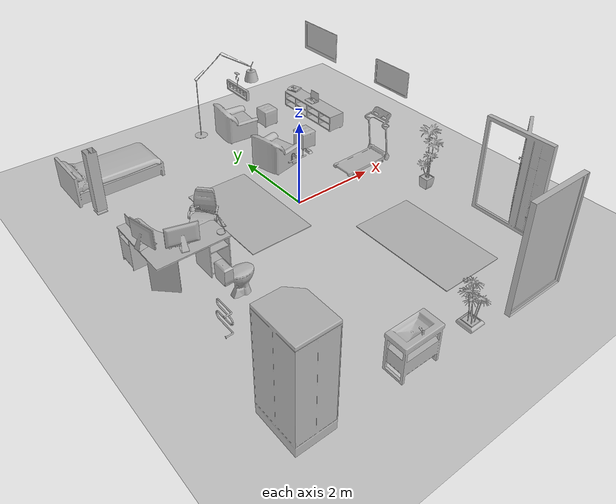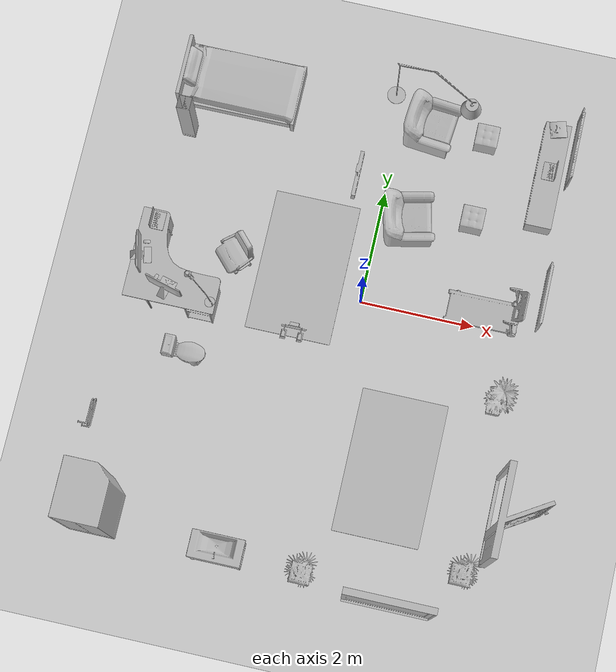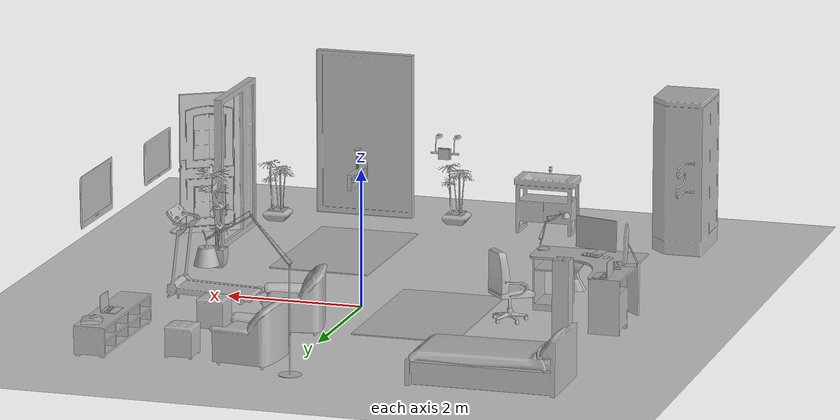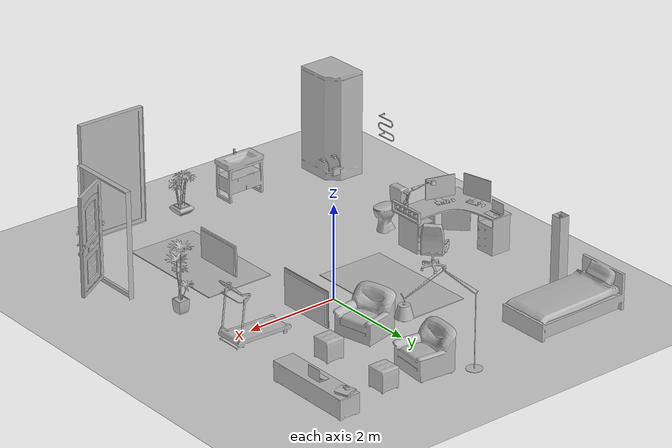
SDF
<sdf version="1.4">
 <world name="default">
  <light name="sun" type="directional">
   <pose>0 0 10 0 -0 0</pose>
   <diffuse>0.8 0.8 0.8 1</diffuse>
   <specular>0.2 0.2 0.2 1</specular>
   <attenuation>
    <range>1000</range>
    <constant>0.9</constant>
    <linear>0.01</linear>
    <quadratic>0.001</quadratic>
   </attenuation>
   <direction>-0.5 0.1 -0.9</direction>
  </light>
  <model name="ground_plane">
   <static>1</static>
   <link name="link">
    <collision name="collision">
     <geometry><plane><normal>0 0 1</normal><size>100 100</size></plane></geometry>
     <surface><friction><ode><mu>100</mu><mu2>50</mu2></ode></friction></surface>
    </collision>
    <visual name="visual">
     <cast_shadows>0</cast_shadows>
     <geometry><plane><normal>0 0 1</normal><size>100 100</size></plane></geometry>
     <material>
      <script><uri>file://media/materials/scripts/gazebo.material</uri><name>Gazebo/Grey</name></script>
     </material>
    </visual>
    <velocity_decay><linear>0</linear><angular>0</angular></velocity_decay>
   </link>
  </model>
  <physics type="ode">
   <max_step_size>0.001</max_step_size>
   <real_time_factor>1</real_time_factor>
   <real_time_update_rate>1000</real_time_update_rate>
   <gravity>0 0 -9.8</gravity>
  </physics>
  <scene><ambient>0.4 0.4 0.4 1</ambient><background>0.7 0.7 0.7 1</background><shadows>1</shadows></scene>
  <spherical_coordinates>
   <surface_model>EARTH_WGS84</surface_model>
   <latitude_deg>0</latitude_deg>
   <longitude_deg>0</longitude_deg>
   <elevation>0</elevation>
   <heading_deg>0</heading_deg>
  </spherical_coordinates>
  <model name="752_0">
   <pose>1.52537 -5.0297 0.021517 0 -0 1.5708</pose>
   <static>1</static>
   <link name="link">
    <collision name="collision"><geometry><box><size>0.115 1.5 2</size></box></geometry></collision>
    <visual name="visual"><geometry><mesh><uri>model://752/752.dae</uri></mesh></geometry></visual>
    <velocity_decay><linear>0</linear><angular>0</angular></velocity_decay>
   </link>
  </model>
  <model name="763_0">
   <pose>2.97688 -3.22937 -0.000662 0 0 -3.14159</pose>
   <static>1</static>
   <link name="link">
    <collision name="collision"><geometry><box><size>0.859999 1.57 2</size></box></geometry></collision>
    <visual name="visual"><geometry><mesh><uri>model://763/763.dae</uri></mesh></geometry></visual>
    <velocity_decay><linear>0</linear><angular>0</angular></velocity_decay>
   </link>
  </model>
  <model name="83_0">
   <pose>-2.71063 -1.60081 0.05 0 -0 0</pose>
   <static>1</static>
   <link name="link">
    <collision name="collision"><geometry><box><size>0.707399 0.352686 2</size></box></geometry></collision>
    <visual name="visual"><geometry><mesh><uri>model://83/83.dae</uri></mesh></geometry></visual>
    <velocity_decay><linear>0</linear><angular>0</angular></velocity_decay>
   </link>
  </model>
  <model name="135_0">
   <pose>-3.55922 -4.42035 0.05 0 -0 3.14159</pose>
   <static>1</static>
   <link name="link">
    <collision name="collision"><geometry><box><size>0.800004 1.00001 2</size></box></geometry></collision>
    <visual name="visual"><geometry><mesh><uri>model://135/135.dae</uri></mesh></geometry></visual>
    <velocity_decay><linear>0</linear><angular>0</angular></velocity_decay>
   </link>
  </model>
  <model name="87_0">
   <pose>-1.40264 -4.73473 0.05 0 -0 1.57079</pose>
   <static>1</static>
   <link name="link">
    <collision name="collision"><geometry><box><size>0.470595 0.900102 2</size></box></geometry></collision>
    <visual name="visual"><geometry><mesh><uri>model://87/87.dae</uri></mesh></geometry></visual>
    <velocity_decay><linear>0</linear><angular>0</angular></velocity_decay>
   </link>
  </model>
  <model name="499_0">
   <pose>-3.9278 -3.05317 1.16 0 -0 0</pose>
   <static>1</static>
   <link name="link">
    <collision name="collision"><geometry><box><size>0.15 0.499608 2</size></box></geometry></collision>
    <visual name="visual"><geometry><mesh><uri>model://499/499.dae</uri></mesh></geometry></visual>
    <velocity_decay><linear>0</linear><angular>0</angular></velocity_decay>
   </link>
  </model>
  <model name="180_0">
   <pose>-0.904588 -1.19189 1.96 0 0 -1.5708</pose>
   <static>1</static>
   <link name="link">
    <collision name="collision"><geometry><box><size>0.32 0.41 2</size></box></geometry></collision>
    <visual name="visual"><geometry><mesh><uri>model://180/180.dae</uri></mesh></geometry></visual>
    <velocity_decay><linear>0</linear><angular>0</angular></velocity_decay>
   </link>
  </model>
  <model name="623_0">
   <pose>2.65337 -1.3008 0.05 0 -0 0</pose>
   <static>1</static>
   <link name="link">
    <collision name="collision"><geometry><box><size>0.529798 0.561408 2</size></box></geometry></collision>
    <visual name="visual"><geometry><mesh><uri>model://623/623.dae</uri></mesh></geometry></visual>
    <velocity_decay><linear>0</linear><angular>0</angular></velocity_decay>
   </link>
  </model>
  <model name="624_0">
   <pose>2.65337 -4.1928 0.05 0 -0 0</pose>
   <static>1</static>
   <link name="link">
    <collision name="collision"><geometry><box><size>0.539563 0.590072 2</size></box></geometry></collision>
    <visual name="visual"><geometry><mesh><uri>model://624/624.dae</uri></mesh></geometry></visual>
    <velocity_decay><linear>0</linear><angular>0</angular></velocity_decay>
   </link>
  </model>
  <model name="624_1">
   <pose>0.025973 -4.75411 0.05 0 -0 0</pose>
   <static>1</static>
   <link name="link">
    <collision name="collision"><geometry><box><size>0.539563 0.590072 2</size></box></geometry></collision>
    <visual name="visual"><geometry><mesh><uri>model://624/624.dae</uri></mesh></geometry></visual>
    <velocity_decay><linear>0</linear><angular>0</angular></velocity_decay>
   </link>
  </model>
  <model name="238_0">
   <pose>1.11737 -2.7168 0.05 0 -0 0</pose>
   <static>1</static>
   <link name="link">
    <collision name="collision"><geometry><box><size>1.5 2.5 0</size></box></geometry></collision>
    <visual name="visual"><geometry><mesh><uri>model://238/238.dae</uri></mesh></geometry></visual>
    <velocity_decay><linear>0</linear><angular>0</angular></velocity_decay>
   </link>
  </model>
  <model name="78_0">
   <pose>-2.87201 3.30486 0.05 0 -0 0</pose>
   <static>1</static>
   <link name="link">
    <collision name="collision"><geometry><box><size>2.09 1.1 2</size></box></geometry></collision>
    <visual name="visual"><geometry><mesh><uri>model://78/78.dae</uri></mesh></geometry></visual>
    <velocity_decay><linear>0</linear><angular>0</angular></velocity_decay>
   </link>
  </model>
  <model name="238_1">
   <pose>-1.11138 0.379129 0.05 0 -0 0</pose>
   <static>1</static>
   <link name="link">
    <collision name="collision"><geometry><box><size>1.5 2.5 0</size></box></geometry></collision>
    <visual name="visual"><geometry><mesh><uri>model://238/238.dae</uri></mesh></geometry></visual>
    <velocity_decay><linear>0</linear><angular>0</angular></velocity_decay>
   </link>
  </model>
  <model name="693_0">
   <pose>0.537517 3.28855 0.05 0 0 -0.102048</pose>
   <static>1</static>
   <link name="link">
    <collision name="collision"><geometry><box><size>0.900053 0.9 2</size></box></geometry></collision>
    <visual name="visual"><geometry><mesh><uri>model://693/693.dae</uri></mesh></geometry></visual>
    <velocity_decay><linear>0</linear><angular>0</angular></velocity_decay>
   </link>
  </model>
  <model name="693_1">
   <pose>0.496773 1.54062 0.05 0 -0 0.22045</pose>
   <static>1</static>
   <link name="link">
    <collision name="collision"><geometry><box><size>0.900053 0.9 2</size></box></geometry></collision>
    <visual name="visual"><geometry><mesh><uri>model://693/693.dae</uri></mesh></geometry></visual>
    <velocity_decay><linear>0</linear><angular>0</angular></velocity_decay>
   </link>
  </model>
  <model name="548_0">
   <pose>1.52838 3.29397 0.05 0 -0 0</pose>
   <static>1</static>
   <link name="link">
    <collision name="collision"><geometry><box><size>0.399784 0.399784 2</size></box></geometry></collision>
    <visual name="visual"><geometry><mesh><uri>model://548/548.dae</uri></mesh></geometry></visual>
    <velocity_decay><linear>0</linear><angular>0</angular></velocity_decay>
   </link>
  </model>
  <model name="548_1">
   <pose>1.58385 1.79839 0.05 0 -0 0</pose>
   <static>1</static>
   <link name="link">
    <collision name="collision"><geometry><box><size>0.399784 0.399784 2</size></box></geometry></collision>
    <visual name="visual"><geometry><mesh><uri>model://548/548.dae</uri></mesh></geometry></visual>
    <velocity_decay><linear>0</linear><angular>0</angular></velocity_decay>
   </link>
  </model>
  <model name="228_0">
   <pose>2.93803 2.8272 1.75 0 0 -3.14159</pose>
   <static>1</static>
   <link name="link">
    <collision name="collision"><geometry><box><size>0.05 1.24002 2</size></box></geometry></collision>
    <visual name="visual"><geometry><mesh><uri>model://228/228.dae</uri></mesh></geometry></visual>
    <velocity_decay><linear>0</linear><angular>0</angular></velocity_decay>
   </link>
  </model>
  <model name="115_0">
   <pose>2.71337 2.8272 0.05 0 0 -3.14159</pose>
   <static>1</static>
   <link name="link">
    <collision name="collision"><geometry><box><size>0.45 1.90002 2</size></box></geometry></collision>
    <visual name="visual"><geometry><mesh><uri>model://115/115.dae</uri></mesh></geometry></visual>
    <velocity_decay><linear>0</linear><angular>0</angular></velocity_decay>
   </link>
  </model>
  <model name="345_0">
   <pose>2.71337 3.64321 0.508793 0 0 -2.84966</pose>
   <static>1</static>
   <link name="link">
    <collision name="collision"><geometry><box><size>0.289994 0.289948 2</size></box></geometry></collision>
    <visual name="visual"><geometry><mesh><uri>model://345/345.dae</uri></mesh></geometry></visual>
    <velocity_decay><linear>0</linear><angular>0</angular></velocity_decay>
   </link>
  </model>
  <model name="120_0">
   <pose>2.70137 2.8872 0.48 0 0 -3.14159</pose>
   <static>1</static>
   <link name="link">
    <collision name="collision"><geometry><box><size>0.225973 0.32 2</size></box></geometry></collision>
    <visual name="visual"><geometry><mesh><uri>model://120/120.dae</uri></mesh></geometry></visual>
    <velocity_decay><linear>0</linear><angular>0</angular></velocity_decay>
   </link>
  </model>
  <model name="294_0">
   <pose>-3.15313 -0.145191 0.05 0 -0 0</pose>
   <static>1</static>
   <link name="link">
    <collision name="collision"><geometry><box><size>1.57989 1.57963 2</size></box></geometry></collision>
    <visual name="visual"><geometry><mesh><uri>model://294/294.dae</uri></mesh></geometry></visual>
    <velocity_decay><linear>0</linear><angular>0</angular></velocity_decay>
   </link>
  </model>
  <model name="106_0">
   <pose>-2.27863 0.247198 0.05 0 -0 0.745969</pose>
   <static>1</static>
   <link name="link">
    <collision name="collision"><geometry><box><size>0.550393 0.596196 2</size></box></geometry></collision>
    <visual name="visual"><geometry><mesh><uri>model://106/106.dae</uri></mesh></geometry></visual>
    <velocity_decay><linear>0</linear><angular>0</angular></velocity_decay>
   </link>
  </model>
  <model name="189_0">
   <pose>-3.79388 -0.201157 0.852203 0 -0 0.221343</pose>
   <static>1</static>
   <link name="link">
    <collision name="collision"><geometry><box><size>0.359507 0.6495 2</size></box></geometry></collision>
    <visual name="visual"><geometry><mesh><uri>model://189/189.dae</uri></mesh></geometry></visual>
    <velocity_decay><linear>0</linear><angular>0</angular></velocity_decay>
   </link>
  </model>
  <model name="189_1">
   <pose>-3.25018 -0.677579 0.852211 0 -0 1.306</pose>
   <static>1</static>
   <link name="link">
    <collision name="collision"><geometry><box><size>0.359507 0.6495 2</size></box></geometry></collision>
    <visual name="visual"><geometry><mesh><uri>model://189/189.dae</uri></mesh></geometry></visual>
    <velocity_decay><linear>0</linear><angular>0</angular></velocity_decay>
   </link>
  </model>
  <model name="120_1">
   <pose>-3.64516 0.454846 0.849976 0 -0 0</pose>
   <static>1</static>
   <link name="link">
    <collision name="collision"><geometry><box><size>0.225973 0.32 2</size></box></geometry></collision>
    <visual name="visual"><geometry><mesh><uri>model://120/120.dae</uri></mesh></geometry></visual>
    <velocity_decay><linear>0</linear><angular>0</angular></velocity_decay>
   </link>
  </model>
  <model name="515_0">
   <pose>-2.64705 -0.611214 0.849982 0 -0 2.53926</pose>
   <static>1</static>
   <link name="link">
    <collision name="collision"><geometry><box><size>0.659706 0.179881 2</size></box></geometry></collision>
    <visual name="visual"><geometry><mesh><uri>model://515/515.dae</uri></mesh></geometry></visual>
    <velocity_decay><linear>0</linear><angular>0</angular></velocity_decay>
   </link>
  </model>
  <model name="517_0">
   <pose>-3.60528 2.37877 0.05 0 -0 0</pose>
   <static>1</static>
   <link name="link">
    <collision name="collision"><geometry><box><size>0.23 0.23 2</size></box></geometry></collision>
    <visual name="visual"><geometry><mesh><uri>model://517/517.dae</uri></mesh></geometry></visual>
    <velocity_decay><linear>0</linear><angular>0</angular></velocity_decay>
   </link>
  </model>
  <model name="520_0">
   <pose>0.481369 3.5952 0.05 0 0 -0.314003</pose>
   <static>1</static>
   <link name="link">
    <collision name="collision"><geometry><box><size>1.7362 0.35315 2</size></box></geometry></collision>
    <visual name="visual"><geometry><mesh><uri>model://520/520.dae</uri></mesh></geometry></visual>
    <velocity_decay><linear>0</linear><angular>0</angular></velocity_decay>
   </link>
  </model>
  <model name="216_0">
   <pose>2.94347 0.295631 1.75 0 0 -3.14159</pose>
   <static>1</static>
   <link name="link">
    <collision name="collision"><geometry><box><size>0.05 1.05992 2</size></box></geometry></collision>
    <visual name="visual"><geometry><mesh><uri>model://216/216.dae</uri></mesh></geometry></visual>
    <velocity_decay><linear>0</linear><angular>0</angular></velocity_decay>
   </link>
  </model>
  <model name="339_0">
   <pose>2.10137 0.2592 0.05 0 -0 0</pose>
   <static>1</static>
   <link name="link">
    <collision name="collision"><geometry><box><size>1.29999 0.62 2</size></box></geometry></collision>
    <visual name="visual"><geometry><mesh><uri>model://339/339.dae</uri></mesh></geometry></visual>
    <velocity_decay><linear>0</linear><angular>0</angular></velocity_decay>
   </link>
  </model>
  <model name="633_0">
   <pose>-0.442631 1.5672 2.19 0 -0 0</pose>
   <static>1</static>
   <link name="link">
    <collision name="collision"><geometry><box><size>0.06 0.76 2</size></box></geometry></collision>
    <visual name="visual"><geometry><mesh><uri>model://633/633.dae</uri></mesh></geometry></visual>
    <velocity_decay><linear>0</linear><angular>0</angular></velocity_decay>
   </link>
  </model>
 </world>
</sdf>
